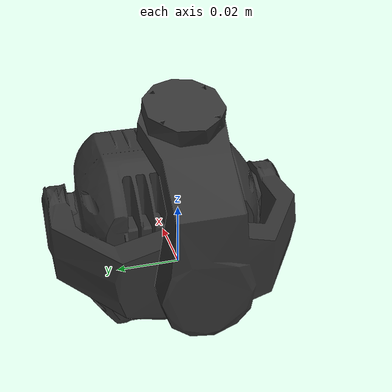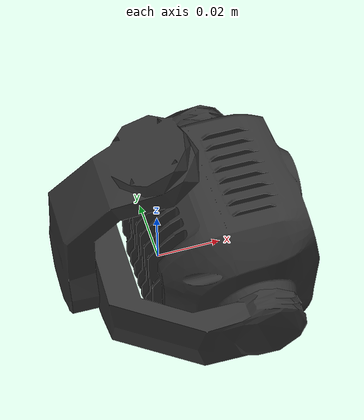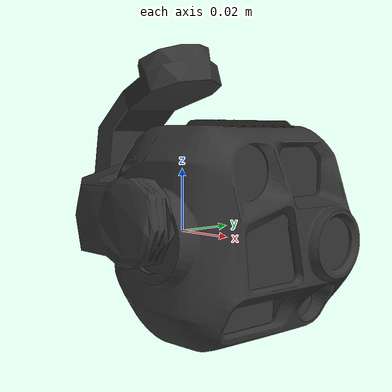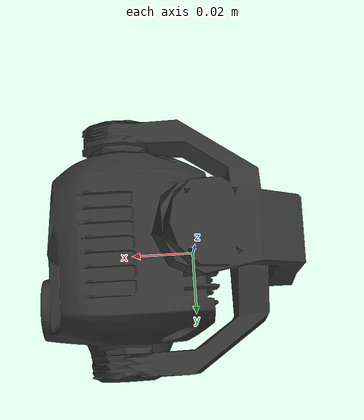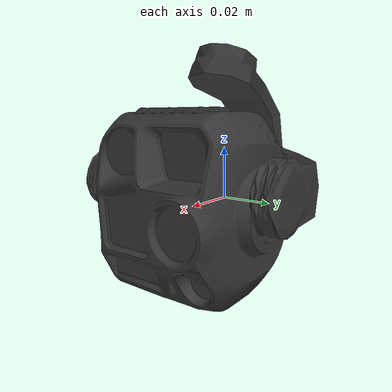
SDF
<?xml version="1.0"?>
<sdf version="1.9">
  <model name="m4e_camera">
    <link name="gimbal_link">
      <pose>0 0 0.004 0 0 0</pose>
      <gravity>false</gravity>
      <inertial>
        <mass>0.12</mass>
        <inertia>
          <ixx>0.00015</ixx>
          <iyy>0.00015</iyy>
          <izz>0.00015</izz>
        </inertia>
      </inertial>
      <visual name="gimbal_joint_visual">
        <pose>0 -0.001 0.005 0 0 -1.5708</pose>
        <transparency>0</transparency>
        <geometry>
          <mesh>
            <uri>model://m4e/meshes/gimbal_joint.dae</uri>
          </mesh>
        </geometry>
        <material>
          <ambient>0.15 0.15 0.15 1</ambient>
          <diffuse>0.2 0.2 0.2 1</diffuse>
          <specular>0.1 0.1 0.1 1</specular>
        </material>
      </visual>
    </link>

    <joint name="camera_joint" type="fixed">
      <parent>gimbal_link</parent>
      <child>camera_link</child>
    </joint>

    <link name="camera_link">
      <pose>0 0 0.004 0 0 0</pose>
      <gravity>false</gravity>
      <inertial>
        <mass>0.06</mass>
        <inertia>
          <ixx>0.00006</ixx>
          <iyy>0.00006</iyy>
          <izz>0.00006</izz>
        </inertia>
      </inertial>

      <visual name="gimbal_visual">
        <pose>0 0 0 0 0 -1.5708</pose>
        <transparency>0</transparency>
        <geometry>
          <mesh>
            <uri>model://m4e/meshes/gimbal.dae</uri>
          </mesh>
        </geometry>
        <material>
          <ambient>0.15 0.15 0.15 1</ambient>
          <diffuse>0.2 0.2 0.2 1</diffuse>
          <specular>0.1 0.1 0.1 1</specular>
        </material>
      </visual>
    </link>

    <joint name="lens_joint" type="fixed">
      <parent>camera_link</parent>
      <child>lens_link</child>
    </joint>

    <link name="lens_link">
      <pose>0 0 0.004 0 0 0</pose>
      <gravity>false</gravity>
      <inertial>
        <mass>0.04</mass>
        <inertia>
          <ixx>0.00004</ixx>
          <iyy>0.00004</iyy>
          <izz>0.00004</izz>
        </inertia>
      </inertial>

      <sensor name="m4e_wide" type="camera">
        <pose>0 0 0 0 0 0</pose>
        <always_on>true</always_on>
        <update_rate>1</update_rate>
        <topic>/drone/camera/wide/image_raw</topic>
        <camera>
          <horizontal_fov>1.2485</horizontal_fov>
          <image>
            <width>5280</width>
            <height>3956</height>
            <format>R8G8B8</format>
          </image>
          <clip>
            <near>0.1</near>
            <far>500.0</far>
          </clip>
          <lens>
            <intrinsics>
              <fx>2932.0</fx>
              <fy>2955.9</fy>
              <cx>2640.0</cx>
              <cy>1978.0</cy>
              <s>0.0</s>
            </intrinsics>
          </lens>
        </camera>
      </sensor>

      <sensor name="m4e_medium_tele" type="camera">
        <pose>0 0 0 0 0 0</pose>
        <always_on>true</always_on>
        <update_rate>1</update_rate>
        <topic>/drone/camera/medium_tele/image_raw</topic>
        <camera>
          <horizontal_fov>0.4942</horizontal_fov>
          <image>
            <width>8064</width>
            <height>6048</height>
            <format>R8G8B8</format>
          </image>
          <clip>
            <near>0.5</near>
            <far>1000.0</far>
          </clip>
          <lens>
            <intrinsics>
              <fx>12787.9</fx>
              <fy>12744.3</fy>
              <cx>4032.0</cx>
              <cy>3024.0</cy>
              <s>0.0</s>
            </intrinsics>
          </lens>
        </camera>
      </sensor>

     <sensor name="m4e_tele" type="camera">
        <pose>0 0 0 0 0 0</pose>
        <always_on>true</always_on>
        <update_rate>1</update_rate>
        <topic>/drone/camera/tele/image_raw</topic>
        <camera>
          <horizontal_fov>0.2099</horizontal_fov>
          <image>
            <width>8192</width>
            <height>6144</height>
            <format>R8G8B8</format>
          </image>
          <clip>
            <near>1.0</near>
            <far>2000.0</far>
          </clip>
          <lens>
            <intrinsics>
              <fx>31112.2</fx>
              <fy>31520.8</fy>
              <cx>4096.0</cx>
              <cy>3072.0</cy>
              <s>0.0</s>
            </intrinsics>
          </lens>
        </camera>
      </sensor>

      <sensor name="m4e_wide_video4k" type="camera">
        <pose>0 0 0 0 0 0</pose>
        <always_on>true</always_on>
        <update_rate>30</update_rate>
        <topic>/drone/camera/wide/video4k/image_raw</topic>
        <camera>
          <horizontal_fov>1.2485</horizontal_fov>
          <image>
            <width>3840</width>
            <height>2160</height>
            <format>R8G8B8</format>
          </image>
          <clip>
            <near>0.1</near>
            <far>500.0</far>
          </clip>
          <lens>
            <intrinsics>
              <fx>2132.4</fx>
              <fy>1614.0</fy>
              <cx>1920.0</cx>
              <cy>1080.0</cy>
              <s>0.0</s>
            </intrinsics>
          </lens>
        </camera>
      </sensor>

      <sensor name="m4e_wide_videofhd" type="camera">
        <pose>0 0 0 0 0 0</pose>
        <always_on>true</always_on>
        <update_rate>30</update_rate>
        <topic>/drone/camera/wide/videofhd/image_raw</topic>
        <camera>
          <horizontal_fov>1.2485</horizontal_fov>
          <image>
            <width>1920</width>
            <height>1080</height>
            <format>R8G8B8</format>
          </image>
          <clip>
            <near>0.1</near>
            <far>500.0</far>
          </clip>
          <lens>
            <intrinsics>
              <fx>1066.2</fx>
              <fy>807.0</fy>
              <cx>960.0</cx>
              <cy>540.0</cy>
              <s>0.0</s>
            </intrinsics>
          </lens>
        </camera>
      </sensor>

      <sensor name="m4e_wide_preview" type="camera">
        <pose>0 0 0 0 0 0</pose>
        <always_on>true</always_on>
        <update_rate>30</update_rate>
        <topic>/drone/camera/wide/preview/image_raw</topic>
        <camera>
          <horizontal_fov>1.2485</horizontal_fov>
          <image>
            <width>640</width>
            <height>360</height>
            <format>R8G8B8</format>
          </image>
          <clip>
            <near>0.1</near>
            <far>500.0</far>
          </clip>
          <lens>
            <intrinsics>
              <fx>355.4</fx>
              <fy>269.0</fy>
              <cx>320.0</cx>
              <cy>180.0</cy>
              <s>0.0</s>
            </intrinsics>
          </lens>
        </camera>
      </sensor>

      <sensor name="m4e_medium_tele_video4k" type="camera">
        <pose>0 0 0 0 0 0</pose>
        <always_on>true</always_on>
        <update_rate>30</update_rate>
        <topic>/drone/camera/medium_tele/video4k/image_raw</topic>
        <camera>
          <horizontal_fov>0.4942</horizontal_fov>
          <image>
            <width>3840</width>
            <height>2160</height>
            <format>R8G8B8</format>
          </image>
          <clip>
            <near>0.5</near>
            <far>1000.0</far>
          </clip>
          <lens>
            <intrinsics>
              <fx>6089.5</fx>
              <fy>4551.5</fy>
              <cx>1920.0</cx>
              <cy>1080.0</cy>
              <s>0.0</s>
            </intrinsics>
          </lens>
        </camera>
      </sensor>

      <sensor name="m4e_medium_tele_videofhd" type="camera">
        <pose>0 0 0 0 0 0</pose>
        <always_on>true</always_on>
        <update_rate>30</update_rate>
        <topic>/drone/camera/medium_tele/videofhd/image_raw</topic>
        <camera>
          <horizontal_fov>0.4942</horizontal_fov>
          <image>
            <width>1920</width>
            <height>1080</height>
            <format>R8G8B8</format>
          </image>
          <clip>
            <near>0.5</near>
            <far>1000.0</far>
          </clip>
          <lens>
            <intrinsics>
              <fx>3044.7</fx>
              <fy>2275.8</fy>
              <cx>960.0</cx>
              <cy>540.0</cy>
              <s>0.0</s>
            </intrinsics>
          </lens>
        </camera>
      </sensor>

      <sensor name="m4e_medium_tele_preview" type="camera">
        <pose>0 0 0 0 0 0</pose>
        <always_on>true</always_on>
        <update_rate>30</update_rate>
        <topic>/drone/camera/medium_tele/preview/image_raw</topic>
        <camera>
          <horizontal_fov>0.4942</horizontal_fov>
          <image>
            <width>640</width>
            <height>360</height>
            <format>R8G8B8</format>
          </image>
          <clip>
            <near>0.5</near>
            <far>1000.0</far>
          </clip>
          <lens>
            <intrinsics>
              <fx>1014.9</fx>
              <fy>758.6</fy>
              <cx>320.0</cx>
              <cy>180.0</cy>
              <s>0.0</s>
            </intrinsics>
          </lens>
        </camera>
      </sensor>

      <sensor name="m4e_tele_video4k" type="camera">
        <pose>0 0 0 0 0 0</pose>
        <always_on>true</always_on>
        <update_rate>30</update_rate>
        <topic>/drone/camera/tele/video4k/image_raw</topic>
        <camera>
          <horizontal_fov>0.2099</horizontal_fov>
          <image>
            <width>3840</width>
            <height>2160</height>
            <format>R8G8B8</format>
          </image>
          <clip>
            <near>1.0</near>
            <far>2000.0</far>
          </clip>
          <lens>
            <intrinsics>
              <fx>14583.8</fx>
              <fy>11081.5</fy>
              <cx>1920.0</cx>
              <cy>1080.0</cy>
              <s>0.0</s>
            </intrinsics>
          </lens>
        </camera>
      </sensor>

      <sensor name="m4e_tele_videofhd" type="camera">
        <pose>0 0 0 0 0 0</pose>
        <always_on>true</always_on>
        <update_rate>30</update_rate>
        <topic>/drone/camera/tele/videofhd/image_raw</topic>
        <camera>
          <horizontal_fov>0.2099</horizontal_fov>
          <image>
            <width>1920</width>
            <height>1080</height>
            <format>R8G8B8</format>
          </image>
          <clip>
            <near>1.0</near>
            <far>2000.0</far>
          </clip>
          <lens>
            <intrinsics>
              <fx>7291.9</fx>
              <fy>5540.8</fy>
              <cx>960.0</cx>
              <cy>540.0</cy>
              <s>0.0</s>
            </intrinsics>
          </lens>
        </camera>
      </sensor>

      <sensor name="m4e_tele_preview" type="camera">
        <pose>0 0 0 0 0 0</pose>
        <always_on>true</always_on>
        <update_rate>30</update_rate>
        <topic>/drone/camera/tele/preview/image_raw</topic>
        <camera>
          <horizontal_fov>0.2099</horizontal_fov>
          <image>
            <width>640</width>
            <height>360</height>
            <format>R8G8B8</format>
          </image>
          <clip>
            <near>1.0</near>
            <far>2000.0</far>
          </clip>
          <lens>
            <intrinsics>
              <fx>2430.6</fx>
              <fy>1846.9</fy>
              <cx>320.0</cx>
              <cy>180.0</cy>
              <s>0.0</s>
            </intrinsics>
          </lens>
        </camera>
      </sensor>

      <sensor name="lrf" type="gpu_lidar">
        <pose>0 0 0 0 0 0</pose>
        <always_on>true</always_on>
        <visualize>true</visualize>
        <update_rate>25</update_rate>
        <topic>/drone/lrf/range</topic>
        <gz_frame_id>lens_link</gz_frame_id>
        <lidar>
          <scan>
            <horizontal>
              <samples>1</samples>
              <resolution>1</resolution>
              <min_angle>0</min_angle>
              <max_angle>0</max_angle>
            </horizontal>
          </scan>
          <range>
            <min>1.0</min>
            <max>1800.0</max>
            <resolution>0.01</resolution>
          </range>
        </lidar>
      </sensor>
    </link>
  </model>
</sdf>
